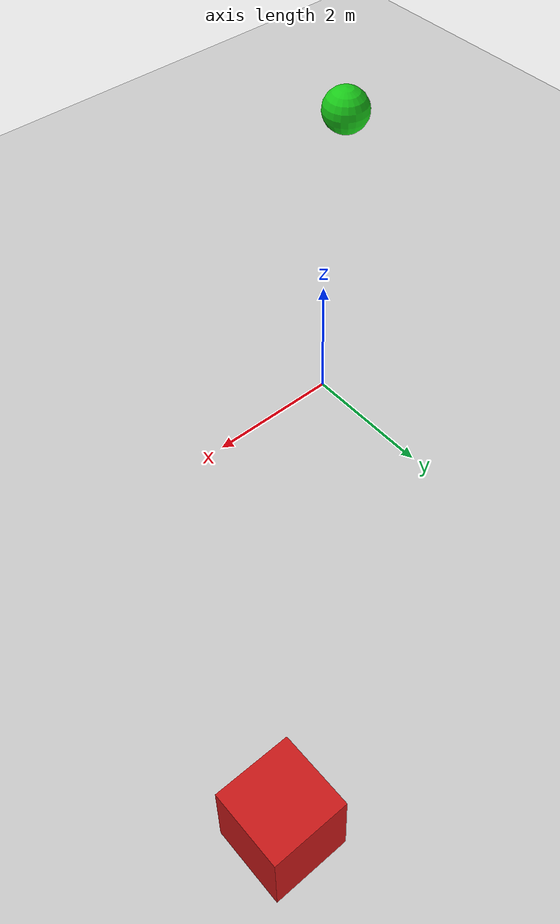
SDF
<?xml version="1.0" ?>
<!--demo world with a car and some pluggings to move it-->
<sdf version="1.7">
    <world name="demo_world">
        <physics name="1ms" type="ignored">
            <max_step_size>0.001</max_step_size>
            <real_time_factor>1.0</real_time_factor>
        </physics>
        <plugin
            filename="libignition-gazebo-physics-system.so"
            name="ignition::gazebo::systems::Physics">
        </plugin>
        <plugin
            filename="libignition-gazebo-user-commands-system.so"
            name="ignition::gazebo::systems::UserCommands">
        </plugin>
        <plugin
            filename="libignition-gazebo-scene-broadcaster-system.so"
            name="ignition::gazebo::systems::SceneBroadcaster">
        </plugin>

        <gui fullscreen="0">

            <!-- 3D scene -->
            <plugin filename="GzScene3D" name="3D View">
                <ignition-gui>
                <title>3D View</title>
                <property type="bool" key="showTitleBar">false</property>
                <property type="string" key="state">docked</property>
                </ignition-gui>

                <engine>ogre2</engine>
                <scene>scene</scene>
                <ambient_light>0.4 0.4 0.4</ambient_light>
                <background_color>0.8 0.8 0.8</background_color>
            </plugin>

            <!-- World control -->
            <plugin filename="WorldControl" name="World control">
                <ignition-gui>
                <title>World control</title>
                <property type="bool" key="showTitleBar">false</property>
                <property type="bool" key="resizable">false</property>
                <property type="double" key="height">72</property>
                <property type="double" key="width">121</property>
                <property type="double" key="z">1</property>

                <property type="string" key="state">floating</property>
                <anchors target="3D View">
                    <line own="left" target="left"/>
                    <line own="bottom" target="bottom"/>
                </anchors>
                </ignition-gui>

                <play_pause>true</play_pause>
                <step>true</step>
                <start_paused>true</start_paused>
                <service>/world/car_world/control</service>
                <stats_topic>/world/car_world/stats</stats_topic>
            </plugin>

            <!-- World statistics -->
            <plugin filename="WorldStats" name="World stats">
                <ignition-gui>
                <title>World stats</title>
                <property type="bool" key="showTitleBar">false</property>
                <property type="bool" key="resizable">false</property>
                <property type="double" key="height">110</property>
                <property type="double" key="width">290</property>
                <property type="double" key="z">1</property>

                <property type="string" key="state">floating</property>
                <anchors target="3D View">
                    <line own="right" target="right"/>
                    <line own="bottom" target="bottom"/>
                </anchors>
                </ignition-gui>

                <sim_time>true</sim_time>
                <real_time>true</real_time>
                <real_time_factor>true</real_time_factor>
                <iterations>true</iterations>
                <topic>/world/car_world/stats</topic>

            </plugin>

            <!-- Entity tree -->
            <plugin filename="EntityTree" name="Entity tree">
            </plugin>

        </gui>

        <light type="directional" name="sun">
            <cast_shadows>true</cast_shadows>
            <pose>0 0 10 0 0 0</pose>
            <diffuse>0.8 0.8 0.8 1</diffuse>
            <specular>0.2 0.2 0.2 1</specular>
            <attenuation>
                <range>1000</range>
                <constant>0.9</constant>
                <linear>0.01</linear>
                <quadratic>0.001</quadratic>
            </attenuation>
            <direction>-0.5 0.1 -0.9</direction>
        </light>

        <model name="ground_plane">
            <static>true</static>
            <link name="link">
                <collision name="collision">
                <geometry>
                    <plane>
                    <normal>0 0 1</normal>
                    </plane>
                </geometry>
                </collision>
                <visual name="visual">
                <geometry>
                    <plane>
                    <normal>0 0 1</normal>
                    <size>100 100</size>
                    </plane>
                </geometry>
                <material>
                    <ambient>0.8 0.8 0.8 1</ambient>
                    <diffuse>0.8 0.8 0.8 1</diffuse>
                    <specular>0.8 0.8 0.8 1</specular>
                </material>
                </visual>
            </link>
        </model>

        <!-- Random Geometric Shapes in the Background -->
        <!--cube-->
        <model name="cube1">
            <pose>5 5 0.5 0 0 0</pose>
            <link name="link">
                <visual name="visual">
                <geometry>
                    <box>
                    <size>1 1 1</size>
                    </box>
                </geometry>
                <material>
                    <ambient>0.8 0.1 0.1 1</ambient>
                    <diffuse>0.8 0.1 0.1 1</diffuse>
                </material>
                </visual>
            </link>
        </model>

        <!--sphere-->
        <model name="sphere1">
            <pose>-5 -5 0.5 0 0 0</pose>
            <link name="link">
                <visual name="visual">
                <geometry>
                    <sphere>
                    <radius>0.5</radius>
                    </sphere>
                </geometry>
                <material>
                    <ambient>0.1 0.8 0.1 1</ambient>
                    <diffuse>0.1 0.8 0.1 1</diffuse>
                </material>
                </visual>
            </link>
        </model>

    </world>
</sdf>
